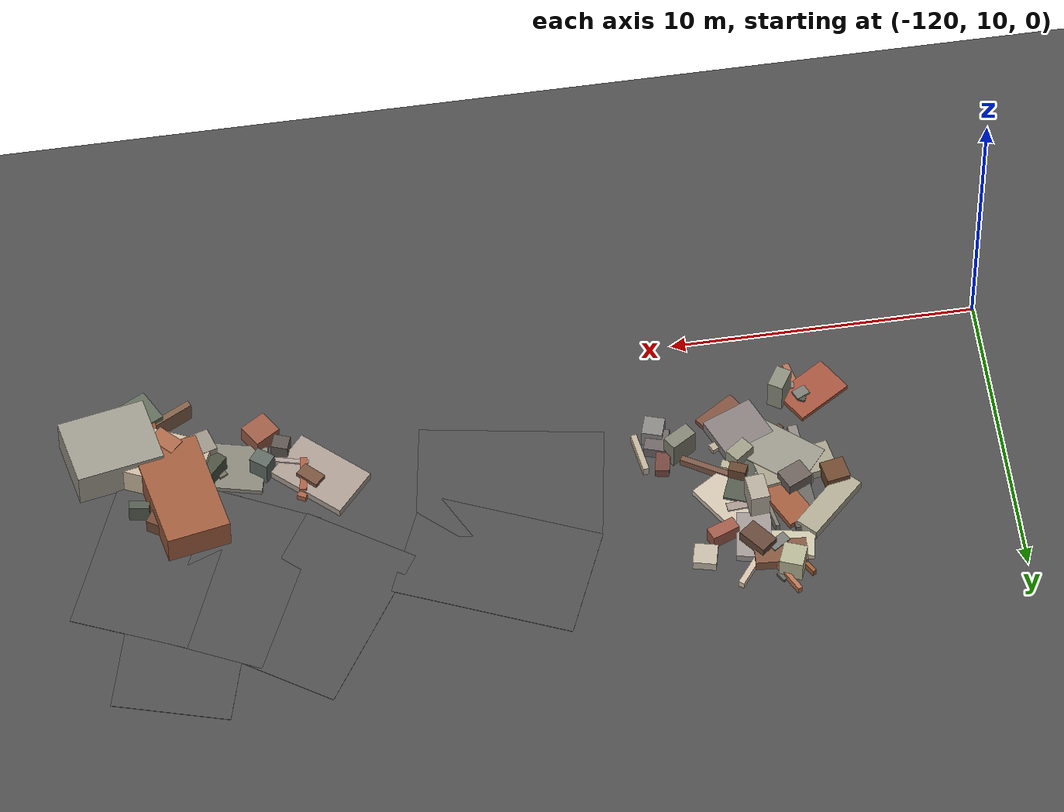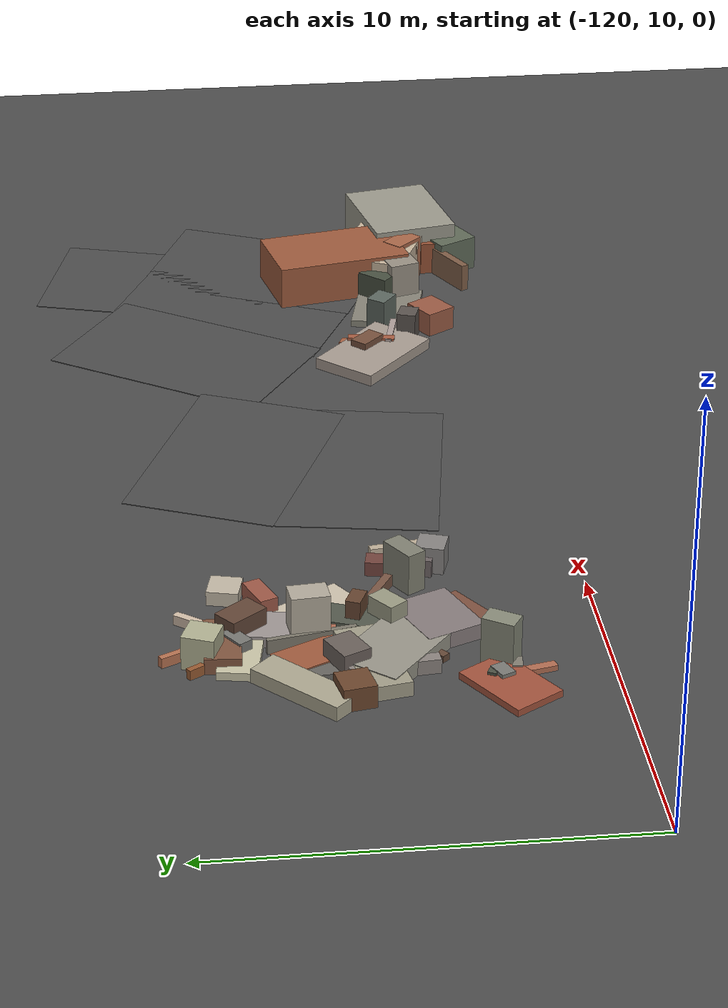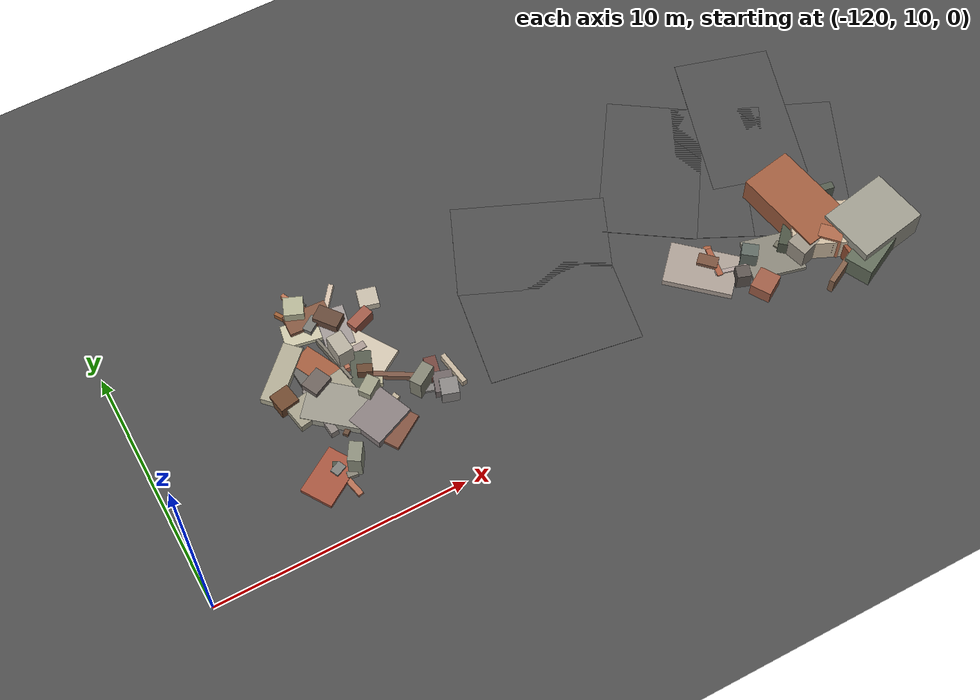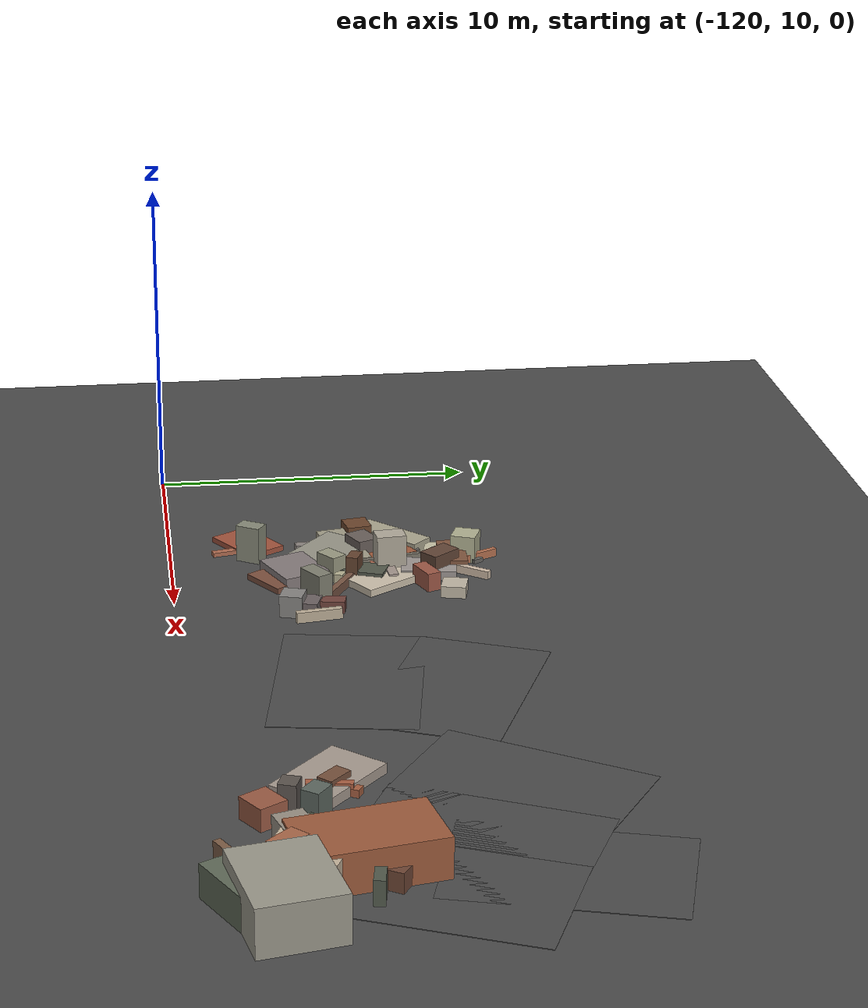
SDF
<sdf version="1.6">
 <world name="navitas_arena">
  <model name="ground_plane">
   <static>true</static>
   <link name="link">
    <collision name="collision">
     <geometry><plane><normal>0 0 1</normal><size>400 400</size></plane></geometry>
     <surface><friction><ode><mu>0.800</mu><mu2>0.800</mu2></ode></friction></surface>
    </collision>
    <visual name="visual">
     <cast_shadows>false</cast_shadows>
     <geometry><plane><normal>0 0 1</normal><size>400 400</size></plane></geometry>
     <material>
      <specular>0.04 0.04 0.04 1</specular>
      <script>
       <uri>file://media/materials/scripts/navitas_asphalt.material</uri>
       <name>Navitas/RealArenaAsphalt</name>
      </script>
     </material>
    </visual>
   </link>
  </model>
  <model name="road_kolay_1_16">
   <static>true</static>
   <pose>-104.036 14.583 0.040 0 0 1.408</pose>
   <link name="link">
    <collision name="col"><geometry><box><size>4.109 6.000 0.020</size></box></geometry></collision>
    <visual name="vis">
     <geometry><box><size>4.109 6.000 0.020</size></box></geometry>
     <material>
      <specular>0.04 0.04 0.04 1</specular>
      <script>
       <uri>file://media/materials/scripts/navitas_asphalt.material</uri>
       <name>Navitas/RealArenaAsphalt</name>
      </script>
     </material>
    </visual>
   </link>
  </model>
  <model name="road_kolay_1_17">
   <static>true</static>
   <pose>-103.196 17.519 0.040 0 0 1.166</pose>
   <link name="link">
    <collision name="col"><geometry><box><size>3.842 6.000 0.020</size></box></geometry></collision>
    <visual name="vis">
     <geometry><box><size>3.842 6.000 0.020</size></box></geometry>
     <material>
      <specular>0.04 0.04 0.04 1</specular>
      <script>
       <uri>file://media/materials/scripts/navitas_asphalt.material</uri>
       <name>Navitas/RealArenaAsphalt</name>
      </script>
     </material>
    </visual>
   </link>
  </model>
  <model name="road_kolay_2_15">
   <static>true</static>
   <pose>-92.396 15.758 0.040 0 0 2.730</pose>
   <link name="link">
    <collision name="col"><geometry><box><size>3.908 6.000 0.020</size></box></geometry></collision>
    <visual name="vis">
     <geometry><box><size>3.908 6.000 0.020</size></box></geometry>
     <material>
      <specular>0.04 0.04 0.04 1</specular>
      <script>
       <uri>file://media/materials/scripts/navitas_asphalt.material</uri>
       <name>Navitas/RealArenaAsphalt</name>
      </script>
     </material>
    </visual>
   </link>
  </model>
  <model name="road_kolay_2_16">
   <static>true</static>
   <pose>-94.954 16.930 0.040 0 0 2.692</pose>
   <link name="link">
    <collision name="col"><geometry><box><size>3.521 6.000 0.020</size></box></geometry></collision>
    <visual name="vis">
     <geometry><box><size>3.521 6.000 0.020</size></box></geometry>
     <material>
      <specular>0.04 0.04 0.04 1</specular>
      <script>
       <uri>file://media/materials/scripts/navitas_asphalt.material</uri>
       <name>Navitas/RealArenaAsphalt</name>
      </script>
     </material>
    </visual>
   </link>
  </model>
  <model name="road_kolay_2_17">
   <static>true</static>
   <pose>-97.374 18.320 0.040 0 0 2.557</pose>
   <link name="link">
    <collision name="col"><geometry><box><size>3.872 6.000 0.020</size></box></geometry></collision>
    <visual name="vis">
     <geometry><box><size>3.872 6.000 0.020</size></box></geometry>
     <material>
      <specular>0.04 0.04 0.04 1</specular>
      <script>
       <uri>file://media/materials/scripts/navitas_asphalt.material</uri>
       <name>Navitas/RealArenaAsphalt</name>
      </script>
     </material>
    </visual>
   </link>
  </model>
  <model name="road_kolay_3_24">
   <static>true</static>
   <pose>-93.007 18.730 0.040 0 0 2.860</pose>
   <link name="link">
    <collision name="col"><geometry><box><size>3.853 6.000 0.020</size></box></geometry></collision>
    <visual name="vis">
     <geometry><box><size>3.853 6.000 0.020</size></box></geometry>
     <material>
      <specular>0.04 0.04 0.04 1</specular>
      <script>
       <uri>file://media/materials/scripts/navitas_asphalt.material</uri>
       <name>Navitas/RealArenaAsphalt</name>
      </script>
     </material>
    </visual>
   </link>
  </model>
  <model name="blk_kolay_2_1_1">
   <static>true</static>
   <pose>-93.797 13.056 0.000 0 0 0</pose>
   <link name="link">
    <collision name="col_0">
     <pose>-0.493 -0.796 0.548 0.000 0.000 1.865</pose>
     <geometry><box><size>0.818 0.847 1.096</size></box></geometry>
    </collision>
    <visual name="vis_0">
     <pose>-0.493 -0.796 0.548 0.000 0.000 1.865</pose>
     <geometry><box><size>0.818 0.847 1.096</size></box></geometry>
     <material>
      <ambient>0.55 0.52 0.48 1</ambient>
      <diffuse>0.60 0.57 0.52 1</diffuse>
      <specular>0.05 0.05 0.045 1</specular>
     </material>
    </visual>
    <collision name="col_1">
     <pose>-0.168 0.677 0.489 0.000 0.000 4.050</pose>
     <geometry><box><size>0.269 0.349 0.977</size></box></geometry>
    </collision>
    <visual name="vis_1">
     <pose>-0.168 0.677 0.489 0.000 0.000 4.050</pose>
     <geometry><box><size>0.269 0.349 0.977</size></box></geometry>
     <material>
      <ambient>0.44 0.26 0.23 1</ambient>
      <diffuse>0.47 0.28 0.25 1</diffuse>
      <specular>0.05 0.05 0.045 1</specular>
     </material>
    </visual>
    <collision name="col_2">
     <pose>0.544 0.798 0.300 0.000 0.000 4.146</pose>
     <geometry><box><size>2.461 0.845 0.600</size></box></geometry>
    </collision>
    <visual name="vis_2">
     <pose>0.544 0.798 0.300 0.000 0.000 4.146</pose>
     <geometry><box><size>2.461 0.845 0.600</size></box></geometry>
     <material>
      <ambient>0.40 0.26 0.19 1</ambient>
      <diffuse>0.44 0.28 0.21 1</diffuse>
      <specular>0.05 0.05 0.045 1</specular>
     </material>
    </visual>
    <collision name="col_3">
     <pose>0.762 0.006 0.530 0.000 0.000 1.849</pose>
     <geometry><box><size>2.573 1.326 1.061</size></box></geometry>
    </collision>
    <visual name="vis_3">
     <pose>0.762 0.006 0.530 0.000 0.000 1.849</pose>
     <geometry><box><size>2.573 1.326 1.061</size></box></geometry>
     <material>
      <ambient>0.42 0.31 0.25 1</ambient>
      <diffuse>0.46 0.34 0.27 1</diffuse>
      <specular>0.05 0.05 0.045 1</specular>
     </material>
    </visual>
    <collision name="col_4">
     <pose>0.787 -0.551 0.524 0.000 0.000 2.361</pose>
     <geometry><box><size>1.423 0.362 1.049</size></box></geometry>
    </collision>
    <visual name="vis_4">
     <pose>0.787 -0.551 0.524 0.000 0.000 2.361</pose>
     <geometry><box><size>1.423 0.362 1.049</size></box></geometry>
     <material>
      <ambient>0.32 0.32 0.30 1</ambient>
      <diffuse>0.35 0.35 0.33 1</diffuse>
      <specular>0.05 0.05 0.045 1</specular>
     </material>
    </visual>
    <collision name="col_5">
     <pose>0.582 -1.022 0.596 0.000 0.000 3.905</pose>
     <geometry><box><size>0.574 0.921 1.192</size></box></geometry>
    </collision>
    <visual name="vis_5">
     <pose>0.582 -1.022 0.596 0.000 0.000 3.905</pose>
     <geometry><box><size>0.574 0.921 1.192</size></box></geometry>
     <material>
      <ambient>0.62 0.38 0.27 1</ambient>
      <diffuse>0.67 0.41 0.29 1</diffuse>
      <specular>0.05 0.05 0.045 1</specular>
     </material>
    </visual>
    <collision name="col_6">
     <pose>1.143 -0.682 0.538 0.000 0.000 2.719</pose>
     <geometry><box><size>3.671 1.872 1.077</size></box></geometry>
    </collision>
    <visual name="vis_6">
     <pose>1.143 -0.682 0.538 0.000 0.000 2.719</pose>
     <geometry><box><size>3.671 1.872 1.077</size></box></geometry>
     <material>
      <ambient>0.73 0.67 0.57 1</ambient>
      <diffuse>0.79 0.72 0.62 1</diffuse>
      <specular>0.05 0.05 0.045 1</specular>
     </material>
    </visual>
    <collision name="col_7">
     <pose>0.305 0.892 0.589 0.000 0.000 1.760</pose>
     <geometry><box><size>3.625 2.090 1.177</size></box></geometry>
    </collision>
    <visual name="vis_7">
     <pose>0.305 0.892 0.589 0.000 0.000 1.760</pose>
     <geometry><box><size>3.625 2.090 1.177</size></box></geometry>
     <material>
      <ambient>0.57 0.33 0.22 1</ambient>
      <diffuse>0.62 0.36 0.24 1</diffuse>
      <specular>0.05 0.05 0.045 1</specular>
     </material>
    </visual>
   </link>
  </model>
  <model name="blk_kolay_2_1_5">
   <static>true</static>
   <pose>-92.236 12.483 0.000 0 0 0</pose>
   <link name="link">
    <collision name="col_0">
     <pose>-0.491 -1.549 0.438 0.000 0.000 1.570</pose>
     <geometry><box><size>1.062 0.480 0.877</size></box></geometry>
    </collision>
    <visual name="vis_0">
     <pose>-0.491 -1.549 0.438 0.000 0.000 1.570</pose>
     <geometry><box><size>1.062 0.480 0.877</size></box></geometry>
     <material>
      <ambient>0.55 0.30 0.20 1</ambient>
      <diffuse>0.59 0.32 0.21 1</diffuse>
      <specular>0.05 0.05 0.045 1</specular>
     </material>
    </visual>
    <collision name="col_1">
     <pose>-0.451 0.290 0.514 0.000 0.000 1.446</pose>
     <geometry><box><size>1.376 0.506 1.028</size></box></geometry>
    </collision>
    <visual name="vis_1">
     <pose>-0.451 0.290 0.514 0.000 0.000 1.446</pose>
     <geometry><box><size>1.376 0.506 1.028</size></box></geometry>
     <material>
      <ambient>0.61 0.35 0.26 1</ambient>
      <diffuse>0.65 0.38 0.29 1</diffuse>
      <specular>0.05 0.05 0.045 1</specular>
     </material>
    </visual>
    <collision name="col_2">
     <pose>0.071 -0.681 0.326 0.000 0.000 -0.534</pose>
     <geometry><box><size>0.560 0.337 0.653</size></box></geometry>
    </collision>
    <visual name="vis_2">
     <pose>0.071 -0.681 0.326 0.000 0.000 -0.534</pose>
     <geometry><box><size>0.560 0.337 0.653</size></box></geometry>
     <material>
      <ambient>0.36 0.33 0.30 1</ambient>
      <diffuse>0.39 0.35 0.32 1</diffuse>
      <specular>0.05 0.05 0.045 1</specular>
     </material>
    </visual>
    <collision name="col_3">
     <pose>0.546 -1.394 0.465 0.000 0.000 0.473</pose>
     <geometry><box><size>2.901 1.141 0.931</size></box></geometry>
    </collision>
    <visual name="vis_3">
     <pose>0.546 -1.394 0.465 0.000 0.000 0.473</pose>
     <geometry><box><size>2.901 1.141 0.931</size></box></geometry>
     <material>
      <ambient>0.35 0.39 0.33 1</ambient>
      <diffuse>0.38 0.42 0.35 1</diffuse>
      <specular>0.05 0.05 0.045 1</specular>
     </material>
    </visual>
    <collision name="col_4">
     <pose>0.791 -0.615 0.658 0.000 0.000 0.188</pose>
     <geometry><box><size>2.877 2.273 1.316</size></box></geometry>
    </collision>
    <visual name="vis_4">
     <pose>0.791 -0.615 0.658 0.000 0.000 0.188</pose>
     <geometry><box><size>2.877 2.273 1.316</size></box></geometry>
     <material>
      <ambient>0.56 0.56 0.51 1</ambient>
      <diffuse>0.61 0.60 0.55 1</diffuse>
      <specular>0.05 0.05 0.045 1</specular>
     </material>
    </visual>
    <collision name="col_5">
     <pose>0.151 1.607 0.366 0.000 0.000 -0.175</pose>
     <geometry><box><size>0.665 0.293 0.731</size></box></geometry>
    </collision>
    <visual name="vis_5">
     <pose>0.151 1.607 0.366 0.000 0.000 -0.175</pose>
     <geometry><box><size>0.665 0.293 0.731</size></box></geometry>
     <material>
      <ambient>0.30 0.32 0.27 1</ambient>
      <diffuse>0.32 0.35 0.30 1</diffuse>
      <specular>0.05 0.05 0.045 1</specular>
     </material>
    </visual>
    <collision name="col_6">
     <pose>1.345 -0.764 0.586 0.000 0.000 0.243</pose>
     <geometry><box><size>0.576 0.565 1.173</size></box></geometry>
    </collision>
    <visual name="vis_6">
     <pose>1.345 -0.764 0.586 0.000 0.000 0.243</pose>
     <geometry><box><size>0.576 0.565 1.173</size></box></geometry>
     <material>
      <ambient>0.65 0.64 0.55 1</ambient>
      <diffuse>0.70 0.69 0.59 1</diffuse>
      <specular>0.05 0.05 0.045 1</specular>
     </material>
    </visual>
    <collision name="col_7">
     <pose>-0.683 -1.430 0.370 0.000 0.000 0.481</pose>
     <geometry><box><size>2.782 0.212 0.741</size></box></geometry>
    </collision>
    <visual name="vis_7">
     <pose>-0.683 -1.430 0.370 0.000 0.000 0.481</pose>
     <geometry><box><size>2.782 0.212 0.741</size></box></geometry>
     <material>
      <ambient>0.46 0.34 0.26 1</ambient>
      <diffuse>0.50 0.37 0.28 1</diffuse>
      <specular>0.05 0.05 0.045 1</specular>
     </material>
    </visual>
    <collision name="col_8">
     <pose>0.349 -1.153 0.633 0.000 0.000 0.821</pose>
     <geometry><box><size>1.305 0.653 1.266</size></box></geometry>
    </collision>
    <visual name="vis_8">
     <pose>0.349 -1.153 0.633 0.000 0.000 0.821</pose>
     <geometry><box><size>1.305 0.653 1.266</size></box></geometry>
     <material>
      <ambient>0.29 0.31 0.29 1</ambient>
      <diffuse>0.32 0.34 0.31 1</diffuse>
      <specular>0.05 0.05 0.045 1</specular>
     </material>
    </visual>
   </link>
  </model>
  <model name="deb_kolay_12">
   <static>true</static>
   <pose>-95.826 12.511 0.000 0 0 0</pose>
   <link name="link">
    <collision name="col_0">
     <pose>-0.471 -0.843 0.317 0.000 0.000 0.561</pose>
     <geometry><box><size>0.916 0.832 0.633</size></box></geometry>
    </collision>
    <visual name="vis_0">
     <pose>-0.471 -0.843 0.317 0.000 0.000 0.561</pose>
     <geometry><box><size>0.916 0.832 0.633</size></box></geometry>
     <material>
      <ambient>0.57 0.33 0.25 1</ambient>
      <diffuse>0.61 0.36 0.27 1</diffuse>
      <specular>0.05 0.05 0.045 1</specular>
     </material>
    </visual>
    <collision name="col_1">
     <pose>0.947 0.451 0.134 0.000 0.000 2.058</pose>
     <geometry><box><size>0.262 0.280 0.267</size></box></geometry>
    </collision>
    <visual name="vis_1">
     <pose>0.947 0.451 0.134 0.000 0.000 2.058</pose>
     <geometry><box><size>0.262 0.280 0.267</size></box></geometry>
     <material>
      <ambient>0.41 0.39 0.35 1</ambient>
      <diffuse>0.44 0.43 0.37 1</diffuse>
      <specular>0.05 0.05 0.045 1</specular>
     </material>
    </visual>
    <collision name="col_2">
     <pose>1.284 0.344 0.414 0.000 0.000 0.821</pose>
     <geometry><box><size>0.878 0.640 0.828</size></box></geometry>
    </collision>
    <visual name="vis_2">
     <pose>1.284 0.344 0.414 0.000 0.000 0.821</pose>
     <geometry><box><size>0.878 0.640 0.828</size></box></geometry>
     <material>
      <ambient>0.27 0.29 0.24 1</ambient>
      <diffuse>0.29 0.32 0.26 1</diffuse>
      <specular>0.05 0.05 0.045 1</specular>
     </material>
    </visual>
    <collision name="col_3">
     <pose>-1.055 -0.147 0.389 0.000 0.000 1.233</pose>
     <geometry><box><size>0.495 0.543 0.779</size></box></geometry>
    </collision>
    <visual name="vis_3">
     <pose>-1.055 -0.147 0.389 0.000 0.000 1.233</pose>
     <geometry><box><size>0.495 0.543 0.779</size></box></geometry>
     <material>
      <ambient>0.34 0.31 0.29 1</ambient>
      <diffuse>0.36 0.33 0.31 1</diffuse>
      <specular>0.05 0.05 0.045 1</specular>
     </material>
    </visual>
    <collision name="col_4">
     <pose>0.569 0.194 0.091 0.000 0.000 2.903</pose>
     <geometry><box><size>2.115 1.707 0.183</size></box></geometry>
    </collision>
    <visual name="vis_4">
     <pose>0.569 0.194 0.091 0.000 0.000 2.903</pose>
     <geometry><box><size>2.115 1.707 0.183</size></box></geometry>
     <material>
      <ambient>0.49 0.49 0.44 1</ambient>
      <diffuse>0.53 0.52 0.47 1</diffuse>
      <specular>0.05 0.05 0.045 1</specular>
     </material>
    </visual>
    <collision name="col_5">
     <pose>-0.378 0.472 0.457 0.000 0.000 0.915</pose>
     <geometry><box><size>0.525 0.641 0.913</size></box></geometry>
    </collision>
    <visual name="vis_5">
     <pose>-0.378 0.472 0.457 0.000 0.000 0.915</pose>
     <geometry><box><size>0.525 0.641 0.913</size></box></geometry>
     <material>
      <ambient>0.35 0.38 0.35 1</ambient>
      <diffuse>0.37 0.41 0.38 1</diffuse>
      <specular>0.05 0.05 0.045 1</specular>
     </material>
    </visual>
    <collision name="col_6">
     <pose>-1.250 0.331 0.180 0.000 0.000 2.899</pose>
     <geometry><box><size>1.265 0.162 0.361</size></box></geometry>
    </collision>
    <visual name="vis_6">
     <pose>-1.250 0.331 0.180 0.000 0.000 2.899</pose>
     <geometry><box><size>1.265 0.162 0.361</size></box></geometry>
     <material>
      <ambient>0.63 0.57 0.55 1</ambient>
      <diffuse>0.68 0.62 0.60 1</diffuse>
      <specular>0.05 0.05 0.045 1</specular>
     </material>
    </visual>
   </link>
  </model>
  <model name="deb_kolay_46">
   <static>true</static>
   <pose>-113.791 15.889 0.000 0 0 0</pose>
   <link name="link">
    <collision name="col_0">
     <pose>0.101 -0.361 0.070 0.000 0.000 3.075</pose>
     <geometry><box><size>0.375 0.256 0.141</size></box></geometry>
    </collision>
    <visual name="vis_0">
     <pose>0.101 -0.361 0.070 0.000 0.000 3.075</pose>
     <geometry><box><size>0.375 0.256 0.141</size></box></geometry>
     <material>
      <ambient>0.52 0.51 0.50 1</ambient>
      <diffuse>0.56 0.55 0.54 1</diffuse>
      <specular>0.05 0.05 0.045 1</specular>
     </material>
    </visual>
    <collision name="col_1">
     <pose>0.611 0.410 0.099 0.000 0.000 1.639</pose>
     <geometry><box><size>2.748 0.836 0.197</size></box></geometry>
    </collision>
    <visual name="vis_1">
     <pose>0.611 0.410 0.099 0.000 0.000 1.639</pose>
     <geometry><box><size>2.748 0.836 0.197</size></box></geometry>
     <material>
      <ambient>0.38 0.37 0.36 1</ambient>
      <diffuse>0.41 0.40 0.38 1</diffuse>
      <specular>0.05 0.05 0.045 1</specular>
     </material>
    </visual>
    <collision name="col_2">
     <pose>-0.251 1.078 0.178 0.000 0.000 3.915</pose>
     <geometry><box><size>2.445 0.780 0.357</size></box></geometry>
    </collision>
    <visual name="vis_2">
     <pose>-0.251 1.078 0.178 0.000 0.000 3.915</pose>
     <geometry><box><size>2.445 0.780 0.357</size></box></geometry>
     <material>
      <ambient>0.63 0.61 0.53 1</ambient>
      <diffuse>0.68 0.66 0.57 1</diffuse>
      <specular>0.05 0.05 0.045 1</specular>
     </material>
    </visual>
    <collision name="col_3">
     <pose>-0.625 0.008 0.283 0.000 0.000 1.752</pose>
     <geometry><box><size>0.772 0.781 0.566</size></box></geometry>
    </collision>
    <visual name="vis_3">
     <pose>-0.625 0.008 0.283 0.000 0.000 1.752</pose>
     <geometry><box><size>0.772 0.781 0.566</size></box></geometry>
     <material>
      <ambient>0.40 0.26 0.17 1</ambient>
      <diffuse>0.43 0.28 0.18 1</diffuse>
      <specular>0.05 0.05 0.045 1</specular>
     </material>
    </visual>
    <collision name="col_4">
     <pose>0.595 -0.526 0.182 0.000 0.000 3.325</pose>
     <geometry><box><size>2.530 1.055 0.364</size></box></geometry>
    </collision>
    <visual name="vis_4">
     <pose>0.595 -0.526 0.182 0.000 0.000 3.325</pose>
     <geometry><box><size>2.530 1.055 0.364</size></box></geometry>
     <material>
      <ambient>0.59 0.58 0.50 1</ambient>
      <diffuse>0.64 0.62 0.54 1</diffuse>
      <specular>0.05 0.05 0.045 1</specular>
     </material>
    </visual>
    <collision name="col_5">
     <pose>0.346 -0.970 0.179 0.000 0.000 1.666</pose>
     <geometry><box><size>2.085 0.305 0.357</size></box></geometry>
    </collision>
    <visual name="vis_5">
     <pose>0.346 -0.970 0.179 0.000 0.000 1.666</pose>
     <geometry><box><size>2.085 0.305 0.357</size></box></geometry>
     <material>
      <ambient>0.51 0.48 0.46 1</ambient>
      <diffuse>0.55 0.52 0.50 1</diffuse>
      <specular>0.05 0.05 0.045 1</specular>
     </material>
    </visual>
   </link>
  </model>
  <model name="deb_kolay_48">
   <static>true</static>
   <pose>-108.979 14.180 0.000 0 0 0</pose>
   <link name="link">
    <collision name="col_0">
     <pose>0.653 -0.020 0.162 0.000 0.000 1.721</pose>
     <geometry><box><size>1.378 0.194 0.324</size></box></geometry>
    </collision>
    <visual name="vis_0">
     <pose>0.653 -0.020 0.162 0.000 0.000 1.721</pose>
     <geometry><box><size>1.378 0.194 0.324</size></box></geometry>
     <material>
      <ambient>0.70 0.64 0.56 1</ambient>
      <diffuse>0.75 0.69 0.60 1</diffuse>
      <specular>0.05 0.05 0.045 1</specular>
     </material>
    </visual>
    <collision name="col_1">
     <pose>0.057 -0.364 0.214 0.000 0.000 -0.308</pose>
     <geometry><box><size>0.725 0.855 0.427</size></box></geometry>
    </collision>
    <visual name="vis_1">
     <pose>0.057 -0.364 0.214 0.000 0.000 -0.308</pose>
     <geometry><box><size>0.725 0.855 0.427</size></box></geometry>
     <material>
      <ambient>0.40 0.36 0.36 1</ambient>
      <diffuse>0.43 0.39 0.39 1</diffuse>
      <specular>0.05 0.05 0.045 1</specular>
     </material>
    </visual>
    <collision name="col_2">
     <pose>-0.232 -0.293 0.062 0.000 0.000 -0.314</pose>
     <geometry><box><size>1.389 0.294 0.124</size></box></geometry>
    </collision>
    <visual name="vis_2">
     <pose>-0.232 -0.293 0.062 0.000 0.000 -0.314</pose>
     <geometry><box><size>1.389 0.294 0.124</size></box></geometry>
     <material>
      <ambient>0.46 0.44 0.43 1</ambient>
      <diffuse>0.49 0.48 0.47 1</diffuse>
      <specular>0.05 0.05 0.045 1</specular>
     </material>
    </visual>
    <collision name="col_3">
     <pose>-0.639 0.013 0.514 0.000 0.000 2.125</pose>
     <geometry><box><size>0.487 0.926 1.028</size></box></geometry>
    </collision>
    <visual name="vis_3">
     <pose>-0.639 0.013 0.514 0.000 0.000 2.125</pose>
     <geometry><box><size>0.487 0.926 1.028</size></box></geometry>
     <material>
      <ambient>0.48 0.47 0.42 1</ambient>
      <diffuse>0.51 0.51 0.45 1</diffuse>
      <specular>0.05 0.05 0.045 1</specular>
     </material>
    </visual>
    <collision name="col_4">
     <pose>-0.253 0.180 0.150 0.000 0.000 0.684</pose>
     <geometry><box><size>0.323 0.313 0.299</size></box></geometry>
    </collision>
    <visual name="vis_4">
     <pose>-0.253 0.180 0.150 0.000 0.000 0.684</pose>
     <geometry><box><size>0.323 0.313 0.299</size></box></geometry>
     <material>
      <ambient>0.70 0.66 0.62 1</ambient>
      <diffuse>0.75 0.71 0.67 1</diffuse>
      <specular>0.05 0.05 0.045 1</specular>
     </material>
    </visual>
    <collision name="col_5">
     <pose>0.104 -0.740 0.333 0.000 0.000 1.262</pose>
     <geometry><box><size>0.684 0.673 0.665</size></box></geometry>
    </collision>
    <visual name="vis_5">
     <pose>0.104 -0.740 0.333 0.000 0.000 1.262</pose>
     <geometry><box><size>0.684 0.673 0.665</size></box></geometry>
     <material>
      <ambient>0.49 0.48 0.47 1</ambient>
      <diffuse>0.53 0.52 0.51 1</diffuse>
      <specular>0.05 0.05 0.045 1</specular>
     </material>
    </visual>
    <collision name="col_6">
     <pose>-0.039 0.371 0.176 0.000 0.000 1.359</pose>
     <geometry><box><size>0.911 0.468 0.351</size></box></geometry>
    </collision>
    <visual name="vis_6">
     <pose>-0.039 0.371 0.176 0.000 0.000 1.359</pose>
     <geometry><box><size>0.911 0.468 0.351</size></box></geometry>
     <material>
      <ambient>0.41 0.25 0.23 1</ambient>
      <diffuse>0.45 0.27 0.24 1</diffuse>
      <specular>0.05 0.05 0.045 1</specular>
     </material>
    </visual>
   </link>
  </model>
  <model name="deb_kolay_64">
   <static>true</static>
   <pose>-111.801 14.607 0.000 0 0 0</pose>
   <link name="link">
    <collision name="col_0">
     <pose>0.162 -0.868 0.092 0.000 0.000 2.146</pose>
     <geometry><box><size>2.515 1.505 0.184</size></box></geometry>
    </collision>
    <visual name="vis_0">
     <pose>0.162 -0.868 0.092 0.000 0.000 2.146</pose>
     <geometry><box><size>2.515 1.505 0.184</size></box></geometry>
     <material>
      <ambient>0.46 0.29 0.23 1</ambient>
      <diffuse>0.50 0.32 0.25 1</diffuse>
      <specular>0.05 0.05 0.045 1</specular>
     </material>
    </visual>
    <collision name="col_1">
     <pose>0.470 -0.667 0.092 0.000 0.000 0.417</pose>
     <geometry><box><size>1.517 0.262 0.185</size></box></geometry>
    </collision>
    <visual name="vis_1">
     <pose>0.470 -0.667 0.092 0.000 0.000 0.417</pose>
     <geometry><box><size>1.517 0.262 0.185</size></box></geometry>
     <material>
      <ambient>0.67 0.62 0.54 1</ambient>
      <diffuse>0.72 0.67 0.58 1</diffuse>
      <specular>0.05 0.05 0.045 1</specular>
     </material>
    </visual>
    <collision name="col_2">
     <pose>0.192 -0.901 0.196 0.000 0.000 1.970</pose>
     <geometry><box><size>1.462 1.761 0.393</size></box></geometry>
    </collision>
    <visual name="vis_2">
     <pose>0.192 -0.901 0.196 0.000 0.000 1.970</pose>
     <geometry><box><size>1.462 1.761 0.393</size></box></geometry>
     <material>
      <ambient>0.49 0.46 0.45 1</ambient>
      <diffuse>0.53 0.49 0.49 1</diffuse>
      <specular>0.05 0.05 0.045 1</specular>
     </material>
    </visual>
    <collision name="col_3">
     <pose>-0.811 0.082 0.194 0.000 0.000 2.446</pose>
     <geometry><box><size>2.893 1.626 0.389</size></box></geometry>
    </collision>
    <visual name="vis_3">
     <pose>-0.811 0.082 0.194 0.000 0.000 2.446</pose>
     <geometry><box><size>2.893 1.626 0.389</size></box></geometry>
     <material>
      <ambient>0.55 0.55 0.50 1</ambient>
      <diffuse>0.60 0.59 0.54 1</diffuse>
      <specular>0.05 0.05 0.045 1</specular>
     </material>
    </visual>
    <collision name="col_4">
     <pose>-0.476 -0.256 0.085 0.000 0.000 0.715</pose>
     <geometry><box><size>1.997 0.206 0.170</size></box></geometry>
    </collision>
    <visual name="vis_4">
     <pose>-0.476 -0.256 0.085 0.000 0.000 0.715</pose>
     <geometry><box><size>1.997 0.206 0.170</size></box></geometry>
     <material>
      <ambient>0.37 0.27 0.20 1</ambient>
      <diffuse>0.40 0.29 0.22 1</diffuse>
      <specular>0.05 0.05 0.045 1</specular>
     </material>
    </visual>
   </link>
  </model>
  <model name="deb_kolay_89">
   <static>true</static>
   <pose>-110.642 18.417 0.000 0 0 0</pose>
   <link name="link">
    <collision name="col_0">
     <pose>-0.580 0.552 0.127 0.000 0.000 0.920</pose>
     <geometry><box><size>1.489 0.187 0.253</size></box></geometry>
    </collision>
    <visual name="vis_0">
     <pose>-0.580 0.552 0.127 0.000 0.000 0.920</pose>
     <geometry><box><size>1.489 0.187 0.253</size></box></geometry>
     <material>
      <ambient>0.77 0.70 0.62 1</ambient>
      <diffuse>0.83 0.75 0.67 1</diffuse>
      <specular>0.05 0.05 0.045 1</specular>
     </material>
    </visual>
    <collision name="col_1">
     <pose>0.842 -0.056 0.177 0.000 0.000 1.328</pose>
     <geometry><box><size>0.749 0.760 0.354</size></box></geometry>
    </collision>
    <visual name="vis_1">
     <pose>0.842 -0.056 0.177 0.000 0.000 1.328</pose>
     <geometry><box><size>0.749 0.760 0.354</size></box></geometry>
     <material>
      <ambient>0.71 0.67 0.60 1</ambient>
      <diffuse>0.76 0.72 0.65 1</diffuse>
      <specular>0.05 0.05 0.045 1</specular>
     </material>
    </visual>
    <collision name="col_2">
     <pose>-0.811 -0.609 0.137 0.000 0.000 1.413</pose>
     <geometry><box><size>1.674 1.110 0.274</size></box></geometry>
    </collision>
    <visual name="vis_2">
     <pose>-0.811 -0.609 0.137 0.000 0.000 1.413</pose>
     <geometry><box><size>1.674 1.110 0.274</size></box></geometry>
     <material>
      <ambient>0.57 0.55 0.53 1</ambient>
      <diffuse>0.62 0.59 0.58 1</diffuse>
      <specular>0.05 0.05 0.045 1</specular>
     </material>
    </visual>
    <collision name="col_3">
     <pose>-0.895 -0.275 0.350 0.000 0.000 2.241</pose>
     <geometry><box><size>1.013 0.639 0.701</size></box></geometry>
    </collision>
    <visual name="vis_3">
     <pose>-0.895 -0.275 0.350 0.000 0.000 2.241</pose>
     <geometry><box><size>1.013 0.639 0.701</size></box></geometry>
     <material>
      <ambient>0.36 0.26 0.20 1</ambient>
      <diffuse>0.39 0.28 0.22 1</diffuse>
      <specular>0.05 0.05 0.045 1</specular>
     </material>
    </visual>
    <collision name="col_4">
     <pose>0.155 -0.808 0.287 0.000 0.000 0.376</pose>
     <geometry><box><size>0.949 0.435 0.575</size></box></geometry>
    </collision>
    <visual name="vis_4">
     <pose>0.155 -0.808 0.287 0.000 0.000 0.376</pose>
     <geometry><box><size>0.949 0.435 0.575</size></box></geometry>
     <material>
      <ambient>0.57 0.32 0.26 1</ambient>
      <diffuse>0.62 0.35 0.28 1</diffuse>
      <specular>0.05 0.05 0.045 1</specular>
     </material>
    </visual>
   </link>
  </model>
  <model name="deb_kolay_152">
   <static>true</static>
   <pose>-97.763 13.372 0.000 0 0 0</pose>
   <link name="link">
    <collision name="col_0">
     <pose>0.286 0.051 0.181 0.000 0.000 1.423</pose>
     <geometry><box><size>1.227 0.227 0.363</size></box></geometry>
    </collision>
    <visual name="vis_0">
     <pose>0.286 0.051 0.181 0.000 0.000 1.423</pose>
     <geometry><box><size>1.227 0.227 0.363</size></box></geometry>
     <material>
      <ambient>0.61 0.34 0.24 1</ambient>
      <diffuse>0.66 0.37 0.26 1</diffuse>
      <specular>0.05 0.05 0.045 1</specular>
     </material>
    </visual>
    <collision name="col_1">
     <pose>-0.272 0.065 0.148 0.000 0.000 2.406</pose>
     <geometry><box><size>2.698 1.741 0.296</size></box></geometry>
    </collision>
    <visual name="vis_1">
     <pose>-0.272 0.065 0.148 0.000 0.000 2.406</pose>
     <geometry><box><size>2.698 1.741 0.296</size></box></geometry>
     <material>
      <ambient>0.61 0.56 0.53 1</ambient>
      <diffuse>0.66 0.61 0.57 1</diffuse>
      <specular>0.05 0.05 0.045 1</specular>
     </material>
    </visual>
    <collision name="col_2">
     <pose>0.067 0.181 0.236 0.000 0.000 0.800</pose>
     <geometry><box><size>0.467 0.790 0.472</size></box></geometry>
    </collision>
    <visual name="vis_2">
     <pose>0.067 0.181 0.236 0.000 0.000 0.800</pose>
     <geometry><box><size>0.467 0.790 0.472</size></box></geometry>
     <material>
      <ambient>0.43 0.30 0.22 1</ambient>
      <diffuse>0.47 0.32 0.24 1</diffuse>
      <specular>0.05 0.05 0.045 1</specular>
     </material>
    </visual>
    <collision name="col_3">
     <pose>0.098 0.151 0.112 0.000 0.000 1.084</pose>
     <geometry><box><size>1.540 0.293 0.224</size></box></geometry>
    </collision>
    <visual name="vis_3">
     <pose>0.098 0.151 0.112 0.000 0.000 1.084</pose>
     <geometry><box><size>1.540 0.293 0.224</size></box></geometry>
     <material>
      <ambient>0.61 0.35 0.24 1</ambient>
      <diffuse>0.66 0.38 0.26 1</diffuse>
      <specular>0.05 0.05 0.045 1</specular>
     </material>
    </visual>
   </link>
  </model>
  <model name="deb_kolay_159">
   <static>true</static>
   <pose>-113.671 12.462 0.000 0 0 0</pose>
   <link name="link">
    <collision name="col_0">
     <pose>0.181 -0.278 0.101 0.000 0.000 1.439</pose>
     <geometry><box><size>0.236 0.398 0.203</size></box></geometry>
    </collision>
    <visual name="vis_0">
     <pose>0.181 -0.278 0.101 0.000 0.000 1.439</pose>
     <geometry><box><size>0.236 0.398 0.203</size></box></geometry>
     <material>
      <ambient>0.48 0.47 0.42 1</ambient>
      <diffuse>0.52 0.50 0.45 1</diffuse>
      <specular>0.05 0.05 0.045 1</specular>
     </material>
    </visual>
    <collision name="col_1">
     <pose>-0.019 -0.571 0.068 0.000 0.000 1.793</pose>
     <geometry><box><size>1.166 0.220 0.135</size></box></geometry>
    </collision>
    <visual name="vis_1">
     <pose>-0.019 -0.571 0.068 0.000 0.000 1.793</pose>
     <geometry><box><size>1.166 0.220 0.135</size></box></geometry>
     <material>
      <ambient>0.65 0.40 0.30 1</ambient>
      <diffuse>0.70 0.43 0.32 1</diffuse>
      <specular>0.05 0.05 0.045 1</specular>
     </material>
    </visual>
    <collision name="col_2">
     <pose>-0.207 0.324 0.122 0.000 0.000 1.112</pose>
     <geometry><box><size>0.207 0.226 0.243</size></box></geometry>
    </collision>
    <visual name="vis_2">
     <pose>-0.207 0.324 0.122 0.000 0.000 1.112</pose>
     <geometry><box><size>0.207 0.226 0.243</size></box></geometry>
     <material>
      <ambient>0.28 0.30 0.25 1</ambient>
      <diffuse>0.30 0.32 0.27 1</diffuse>
      <specular>0.05 0.05 0.045 1</specular>
     </material>
    </visual>
    <collision name="col_3">
     <pose>0.515 0.038 0.578 0.000 0.000 2.585</pose>
     <geometry><box><size>0.506 0.780 1.156</size></box></geometry>
    </collision>
    <visual name="vis_3">
     <pose>0.515 0.038 0.578 0.000 0.000 2.585</pose>
     <geometry><box><size>0.506 0.780 1.156</size></box></geometry>
     <material>
      <ambient>0.50 0.51 0.45 1</ambient>
      <diffuse>0.54 0.55 0.48 1</diffuse>
      <specular>0.05 0.05 0.045 1</specular>
     </material>
    </visual>
    <collision name="col_4">
     <pose>-0.576 -0.003 0.086 0.000 0.000 0.564</pose>
     <geometry><box><size>1.961 1.303 0.172</size></box></geometry>
    </collision>
    <visual name="vis_4">
     <pose>-0.576 -0.003 0.086 0.000 0.000 0.564</pose>
     <geometry><box><size>1.961 1.303 0.172</size></box></geometry>
     <material>
      <ambient>0.59 0.31 0.22 1</ambient>
      <diffuse>0.64 0.33 0.24 1</diffuse>
      <specular>0.05 0.05 0.045 1</specular>
     </material>
    </visual>
    <collision name="col_5">
     <pose>-0.193 0.101 0.133 0.000 0.000 0.433</pose>
     <geometry><box><size>0.475 0.350 0.265</size></box></geometry>
    </collision>
    <visual name="vis_5">
     <pose>-0.193 0.101 0.133 0.000 0.000 0.433</pose>
     <geometry><box><size>0.475 0.350 0.265</size></box></geometry>
     <material>
      <ambient>0.44 0.44 0.42 1</ambient>
      <diffuse>0.48 0.48 0.46 1</diffuse>
      <specular>0.05 0.05 0.045 1</specular>
     </material>
    </visual>
   </link>
  </model>
  <model name="deb_kolay_181">
   <static>true</static>
   <pose>-112.215 18.763 0.000 0 0 0</pose>
   <link name="link">
    <collision name="col_0">
     <pose>-0.599 0.118 0.123 0.000 0.000 2.130</pose>
     <geometry><box><size>1.329 0.144 0.246</size></box></geometry>
    </collision>
    <visual name="vis_0">
     <pose>-0.599 0.118 0.123 0.000 0.000 2.130</pose>
     <geometry><box><size>1.329 0.144 0.246</size></box></geometry>
     <material>
      <ambient>0.55 0.33 0.18 1</ambient>
      <diffuse>0.60 0.36 0.20 1</diffuse>
      <specular>0.05 0.05 0.045 1</specular>
     </material>
    </visual>
    <collision name="col_1">
     <pose>0.067 0.376 0.125 0.000 0.000 2.045</pose>
     <geometry><box><size>2.004 0.155 0.251</size></box></geometry>
    </collision>
    <visual name="vis_1">
     <pose>0.067 0.376 0.125 0.000 0.000 2.045</pose>
     <geometry><box><size>2.004 0.155 0.251</size></box></geometry>
     <material>
      <ambient>0.67 0.42 0.30 1</ambient>
      <diffuse>0.72 0.45 0.32 1</diffuse>
      <specular>0.05 0.05 0.045 1</specular>
     </material>
    </visual>
    <collision name="col_2">
     <pose>-0.004 0.575 0.061 0.000 0.000 2.123</pose>
     <geometry><box><size>0.353 0.380 0.123</size></box></geometry>
    </collision>
    <visual name="vis_2">
     <pose>-0.004 0.575 0.061 0.000 0.000 2.123</pose>
     <geometry><box><size>0.353 0.380 0.123</size></box></geometry>
     <material>
      <ambient>0.38 0.37 0.35 1</ambient>
      <diffuse>0.41 0.40 0.38 1</diffuse>
      <specular>0.05 0.05 0.045 1</specular>
     </material>
    </visual>
    <collision name="col_3">
     <pose>-0.068 -0.570 0.102 0.000 0.000 -0.185</pose>
     <geometry><box><size>2.164 0.927 0.203</size></box></geometry>
    </collision>
    <visual name="vis_3">
     <pose>-0.068 -0.570 0.102 0.000 0.000 -0.185</pose>
     <geometry><box><size>2.164 0.927 0.203</size></box></geometry>
     <material>
      <ambient>0.73 0.71 0.61 1</ambient>
      <diffuse>0.79 0.77 0.66 1</diffuse>
      <specular>0.05 0.05 0.045 1</specular>
     </material>
    </visual>
    <collision name="col_4">
     <pose>0.013 -0.149 0.198 0.000 0.000 -0.054</pose>
     <geometry><box><size>1.693 0.843 0.396</size></box></geometry>
    </collision>
    <visual name="vis_4">
     <pose>0.013 -0.149 0.198 0.000 0.000 -0.054</pose>
     <geometry><box><size>1.693 0.843 0.396</size></box></geometry>
     <material>
      <ambient>0.47 0.32 0.23 1</ambient>
      <diffuse>0.51 0.34 0.25 1</diffuse>
      <specular>0.05 0.05 0.045 1</specular>
     </material>
    </visual>
    <collision name="col_5">
     <pose>0.025 -0.476 0.224 0.000 0.000 0.591</pose>
     <geometry><box><size>0.670 0.361 0.449</size></box></geometry>
    </collision>
    <visual name="vis_5">
     <pose>0.025 -0.476 0.224 0.000 0.000 0.591</pose>
     <geometry><box><size>0.670 0.361 0.449</size></box></geometry>
     <material>
      <ambient>0.43 0.44 0.42 1</ambient>
      <diffuse>0.47 0.47 0.45 1</diffuse>
      <specular>0.05 0.05 0.045 1</specular>
     </material>
    </visual>
    <collision name="col_6">
     <pose>-0.307 0.319 0.417 0.000 0.000 1.193</pose>
     <geometry><box><size>0.768 0.761 0.833</size></box></geometry>
    </collision>
    <visual name="vis_6">
     <pose>-0.307 0.319 0.417 0.000 0.000 1.193</pose>
     <geometry><box><size>0.768 0.761 0.833</size></box></geometry>
     <material>
      <ambient>0.64 0.65 0.53 1</ambient>
      <diffuse>0.70 0.70 0.58 1</diffuse>
      <specular>0.05 0.05 0.045 1</specular>
     </material>
    </visual>
   </link>
  </model>
  <model name="deb_kolay_191">
   <static>true</static>
   <pose>-112.382 16.831 0.000 0 0 0</pose>
   <link name="link">
    <collision name="col_0">
     <pose>0.638 -0.193 0.619 0.000 0.000 1.656</pose>
     <geometry><box><size>0.899 0.622 1.239</size></box></geometry>
    </collision>
    <visual name="vis_0">
     <pose>0.638 -0.193 0.619 0.000 0.000 1.656</pose>
     <geometry><box><size>0.899 0.622 1.239</size></box></geometry>
     <material>
      <ambient>0.65 0.62 0.56 1</ambient>
      <diffuse>0.70 0.67 0.61 1</diffuse>
      <specular>0.05 0.05 0.045 1</specular>
     </material>
    </visual>
    <collision name="col_1">
     <pose>-0.289 -0.338 0.116 0.000 0.000 2.027</pose>
     <geometry><box><size>1.987 0.949 0.232</size></box></geometry>
    </collision>
    <visual name="vis_1">
     <pose>-0.289 -0.338 0.116 0.000 0.000 2.027</pose>
     <geometry><box><size>1.987 0.949 0.232</size></box></geometry>
     <material>
      <ambient>0.58 0.33 0.22 1</ambient>
      <diffuse>0.63 0.36 0.24 1</diffuse>
      <specular>0.05 0.05 0.045 1</specular>
     </material>
    </visual>
    <collision name="col_2">
     <pose>0.636 -0.570 0.148 0.000 0.000 1.415</pose>
     <geometry><box><size>0.479 0.201 0.296</size></box></geometry>
    </collision>
    <visual name="vis_2">
     <pose>0.636 -0.570 0.148 0.000 0.000 1.415</pose>
     <geometry><box><size>0.479 0.201 0.296</size></box></geometry>
     <material>
      <ambient>0.65 0.40 0.31 1</ambient>
      <diffuse>0.70 0.43 0.33 1</diffuse>
      <specular>0.05 0.05 0.045 1</specular>
     </material>
    </visual>
    <collision name="col_3">
     <pose>0.142 -0.562 0.110 0.000 0.000 1.222</pose>
     <geometry><box><size>0.334 0.461 0.220</size></box></geometry>
    </collision>
    <visual name="vis_3">
     <pose>0.142 -0.562 0.110 0.000 0.000 1.222</pose>
     <geometry><box><size>0.334 0.461 0.220</size></box></geometry>
     <material>
      <ambient>0.59 0.56 0.52 1</ambient>
      <diffuse>0.63 0.60 0.56 1</diffuse>
      <specular>0.05 0.05 0.045 1</specular>
     </material>
    </visual>
    <collision name="col_4">
     <pose>0.322 -0.235 0.175 0.000 0.000 1.768</pose>
     <geometry><box><size>2.111 0.124 0.351</size></box></geometry>
    </collision>
    <visual name="vis_4">
     <pose>0.322 -0.235 0.175 0.000 0.000 1.768</pose>
     <geometry><box><size>2.111 0.124 0.351</size></box></geometry>
     <material>
      <ambient>0.45 0.43 0.39 1</ambient>
      <diffuse>0.49 0.47 0.42 1</diffuse>
      <specular>0.05 0.05 0.045 1</specular>
     </material>
    </visual>
    <collision name="col_5">
     <pose>-0.710 -0.908 0.326 0.000 0.000 2.018</pose>
     <geometry><box><size>0.703 0.874 0.653</size></box></geometry>
    </collision>
    <visual name="vis_5">
     <pose>-0.710 -0.908 0.326 0.000 0.000 2.018</pose>
     <geometry><box><size>0.703 0.874 0.653</size></box></geometry>
     <material>
      <ambient>0.39 0.35 0.33 1</ambient>
      <diffuse>0.42 0.38 0.36 1</diffuse>
      <specular>0.05 0.05 0.045 1</specular>
     </material>
    </visual>
    <collision name="col_6">
     <pose>1.033 -0.217 0.145 0.000 0.000 3.210</pose>
     <geometry><box><size>1.156 0.294 0.290</size></box></geometry>
    </collision>
    <visual name="vis_6">
     <pose>1.033 -0.217 0.145 0.000 0.000 3.210</pose>
     <geometry><box><size>1.156 0.294 0.290</size></box></geometry>
     <material>
      <ambient>0.60 0.55 0.52 1</ambient>
      <diffuse>0.65 0.59 0.56 1</diffuse>
      <specular>0.05 0.05 0.045 1</specular>
     </material>
    </visual>
   </link>
  </model>
  <model name="deb_kolay_208">
   <static>true</static>
   <pose>-111.472 15.524 0.000 0 0 0</pose>
   <link name="link">
    <collision name="col_0">
     <pose>0.592 0.762 0.115 0.000 0.000 2.141</pose>
     <geometry><box><size>1.944 1.361 0.229</size></box></geometry>
    </collision>
    <visual name="vis_0">
     <pose>0.592 0.762 0.115 0.000 0.000 2.141</pose>
     <geometry><box><size>1.944 1.361 0.229</size></box></geometry>
     <material>
      <ambient>0.75 0.70 0.63 1</ambient>
      <diffuse>0.81 0.76 0.68 1</diffuse>
      <specular>0.05 0.05 0.045 1</specular>
     </material>
    </visual>
    <collision name="col_1">
     <pose>-0.210 -0.215 0.159 0.000 0.000 2.749</pose>
     <geometry><box><size>1.778 0.278 0.318</size></box></geometry>
    </collision>
    <visual name="vis_1">
     <pose>-0.210 -0.215 0.159 0.000 0.000 2.749</pose>
     <geometry><box><size>1.778 0.278 0.318</size></box></geometry>
     <material>
      <ambient>0.67 0.65 0.54 1</ambient>
      <diffuse>0.72 0.70 0.58 1</diffuse>
      <specular>0.05 0.05 0.045 1</specular>
     </material>
    </visual>
    <collision name="col_2">
     <pose>-0.109 -0.354 0.167 0.000 0.000 1.191</pose>
     <geometry><box><size>2.729 0.800 0.334</size></box></geometry>
    </collision>
    <visual name="vis_2">
     <pose>-0.109 -0.354 0.167 0.000 0.000 1.191</pose>
     <geometry><box><size>2.729 0.800 0.334</size></box></geometry>
     <material>
      <ambient>0.31 0.32 0.28 1</ambient>
      <diffuse>0.33 0.35 0.30 1</diffuse>
      <specular>0.05 0.05 0.045 1</specular>
     </material>
    </visual>
    <collision name="col_3">
     <pose>-0.007 -0.705 0.392 0.000 0.000 2.211</pose>
     <geometry><box><size>0.501 0.757 0.784</size></box></geometry>
    </collision>
    <visual name="vis_3">
     <pose>-0.007 -0.705 0.392 0.000 0.000 2.211</pose>
     <geometry><box><size>0.501 0.757 0.784</size></box></geometry>
     <material>
      <ambient>0.57 0.57 0.48 1</ambient>
      <diffuse>0.61 0.61 0.52 1</diffuse>
      <specular>0.05 0.05 0.045 1</specular>
     </material>
    </visual>
    <collision name="col_4">
     <pose>0.165 -0.016 0.390 0.000 0.000 2.726</pose>
     <geometry><box><size>0.572 0.351 0.780</size></box></geometry>
    </collision>
    <visual name="vis_4">
     <pose>0.165 -0.016 0.390 0.000 0.000 2.726</pose>
     <geometry><box><size>0.572 0.351 0.780</size></box></geometry>
     <material>
      <ambient>0.37 0.25 0.18 1</ambient>
      <diffuse>0.40 0.27 0.19 1</diffuse>
      <specular>0.05 0.05 0.045 1</specular>
     </material>
    </visual>
    <collision name="col_5">
     <pose>0.823 -0.370 0.147 0.000 0.000 2.610</pose>
     <geometry><box><size>2.384 0.194 0.294</size></box></geometry>
    </collision>
    <visual name="vis_5">
     <pose>0.823 -0.370 0.147 0.000 0.000 2.610</pose>
     <geometry><box><size>2.384 0.194 0.294</size></box></geometry>
     <material>
      <ambient>0.44 0.31 0.25 1</ambient>
      <diffuse>0.48 0.34 0.27 1</diffuse>
      <specular>0.05 0.05 0.045 1</specular>
     </material>
    </visual>
    <collision name="col_6">
     <pose>-0.236 -0.238 0.144 0.000 0.000 3.225</pose>
     <geometry><box><size>0.274 0.289 0.289</size></box></geometry>
    </collision>
    <visual name="vis_6">
     <pose>-0.236 -0.238 0.144 0.000 0.000 3.225</pose>
     <geometry><box><size>0.274 0.289 0.289</size></box></geometry>
     <material>
      <ambient>0.65 0.63 0.56 1</ambient>
      <diffuse>0.70 0.68 0.61 1</diffuse>
      <specular>0.05 0.05 0.045 1</specular>
     </material>
    </visual>
   </link>
  </model>
 </world>
</sdf>
